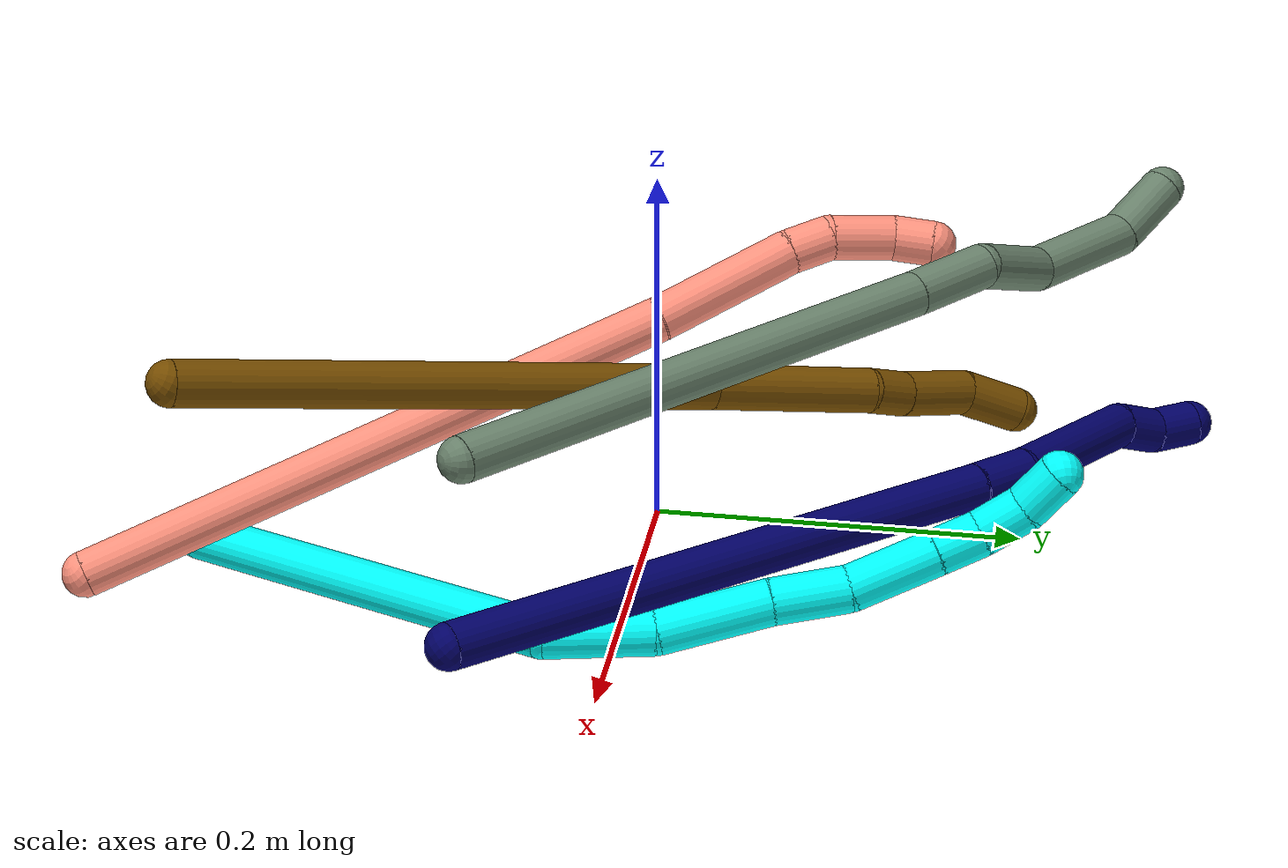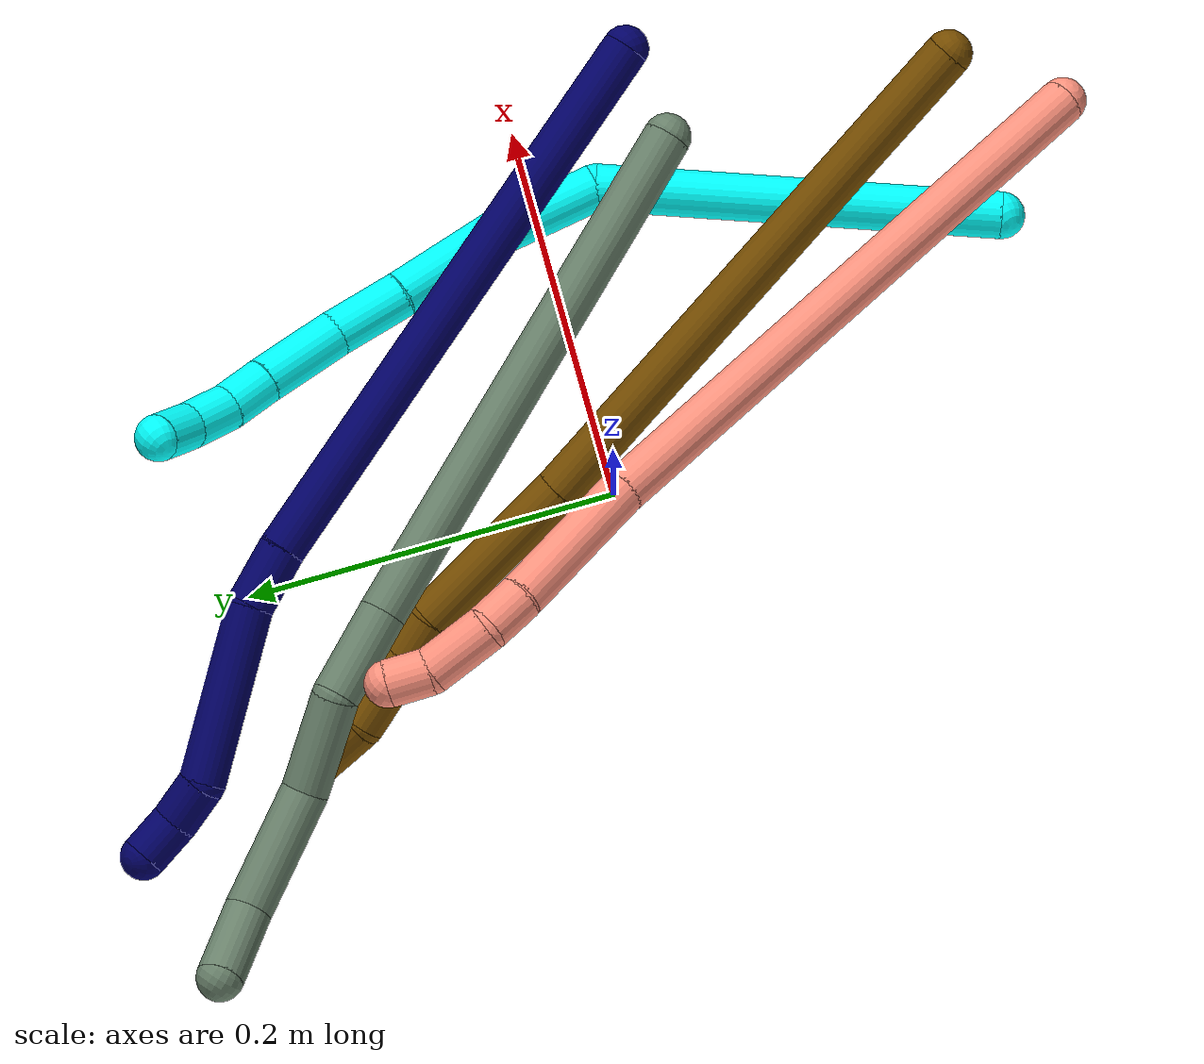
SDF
<sdf version="1.7">
 <world name="default">
  <model name="3">
   <static>0</static>
   <link name="3">
    <collision name="collision-cylinder-e_1_1_4">
     <pose>-0.025454 0.084333 -0.061261 -2.19903 -0.239508 0.463776</pose>
     <geometry><cylinder><radius>0.0125</radius><length>0.214596</length></cylinder></geometry>
     <surface>
      <friction><ode><mu>1.16</mu><mu2>1.16</mu2><slip1>0</slip1><slip2>0</slip2></ode></friction>
      <contact><ode><kp>1e+06</kp><kd>1</kd><max_vel>0</max_vel><min_depth>0.001</min_depth></ode></contact>
     </surface>
    </collision>
    <visual name="visual-cylinder-e_1_1_4">
     <pose>-0.025454 0.084333 -0.061261 -2.19903 -0.239508 0.463776</pose>
     <geometry><cylinder><radius>0.0125</radius><length>0.214596</length></cylinder></geometry>
     <material><ambient>0.003922 1 0.996078 1</ambient></material>
    </visual>
    <collision name="collision-cylinder-e_2_4_5">
     <pose>-0.066617 0.192929 -0.127268 -1.76397 -0.566087 0.679149</pose>
     <geometry><cylinder><radius>0.0125</radius><length>0.058582</length></cylinder></geometry>
     <surface>
      <friction><ode><mu>1.16</mu><mu2>1.16</mu2><slip1>0</slip1><slip2>0</slip2></ode></friction>
      <contact><ode><kp>1e+06</kp><kd>1</kd><max_vel>0</max_vel><min_depth>0.001</min_depth></ode></contact>
     </surface>
    </collision>
    <visual name="visual-cylinder-e_2_4_5">
     <pose>-0.066617 0.192929 -0.127268 -1.76397 -0.566087 0.679149</pose>
     <geometry><cylinder><radius>0.0125</radius><length>0.058582</length></cylinder></geometry>
     <material><ambient>0.003922 1 0.996078 1</ambient></material>
    </visual>
    <collision name="collision-cylinder-e_3_5_6">
     <pose>-0.09705 0.243768 -0.130259 -1.50488 -0.504968 0.473962</pose>
     <geometry><cylinder><radius>0.0125</radius><length>0.060869</length></cylinder></geometry>
     <surface>
      <friction><ode><mu>1.16</mu><mu2>1.16</mu2><slip1>0</slip1><slip2>0</slip2></ode></friction>
      <contact><ode><kp>1e+06</kp><kd>1</kd><max_vel>0</max_vel><min_depth>0.001</min_depth></ode></contact>
     </surface>
    </collision>
    <visual name="visual-cylinder-e_3_5_6">
     <pose>-0.09705 0.243768 -0.130259 -1.50488 -0.504968 0.473962</pose>
     <geometry><cylinder><radius>0.0125</radius><length>0.060869</length></cylinder></geometry>
     <material><ambient>0.003922 1 0.996078 1</ambient></material>
    </visual>
    <collision name="collision-cylinder-e_4_6_7">
     <pose>-0.122517 0.28785 -0.128881 -1.59234 -0.550382 0.561754</pose>
     <geometry><cylinder><radius>0.0125</radius><length>0.041083</length></cylinder></geometry>
     <surface>
      <friction><ode><mu>1.16</mu><mu2>1.16</mu2><slip1>0</slip1><slip2>0</slip2></ode></friction>
      <contact><ode><kp>1e+06</kp><kd>1</kd><max_vel>0</max_vel><min_depth>0.001</min_depth></ode></contact>
     </surface>
    </collision>
    <visual name="visual-cylinder-e_4_6_7">
     <pose>-0.122517 0.28785 -0.128881 -1.59234 -0.550382 0.561754</pose>
     <geometry><cylinder><radius>0.0125</radius><length>0.041083</length></cylinder></geometry>
     <material><ambient>0.003922 1 0.996078 1</ambient></material>
    </visual>
    <collision name="collision-cylinder-e_5_7_8">
     <pose>-0.142411 0.327272 -0.125447 -1.39861 -0.390216 0.32943</pose>
     <geometry><cylinder><radius>0.0125</radius><length>0.04811</length></cylinder></geometry>
     <surface>
      <friction><ode><mu>1.16</mu><mu2>1.16</mu2><slip1>0</slip1><slip2>0</slip2></ode></friction>
      <contact><ode><kp>1e+06</kp><kd>1</kd><max_vel>0</max_vel><min_depth>0.001</min_depth></ode></contact>
     </surface>
    </collision>
    <visual name="visual-cylinder-e_5_7_8">
     <pose>-0.142411 0.327272 -0.125447 -1.39861 -0.390216 0.32943</pose>
     <geometry><cylinder><radius>0.0125</radius><length>0.04811</length></cylinder></geometry>
     <material><ambient>0.003922 1 0.996078 1</ambient></material>
    </visual>
    <collision name="collision-cylinder-e_6_8_9">
     <pose>-0.156645 0.360491 -0.119346 -1.37092 -0.415258 0.341187</pose>
     <geometry><cylinder><radius>0.0125</radius><length>0.025205</length></cylinder></geometry>
     <surface>
      <friction><ode><mu>1.16</mu><mu2>1.16</mu2><slip1>0</slip1><slip2>0</slip2></ode></friction>
      <contact><ode><kp>1e+06</kp><kd>1</kd><max_vel>0</max_vel><min_depth>0.001</min_depth></ode></contact>
     </surface>
    </collision>
    <visual name="visual-cylinder-e_6_8_9">
     <pose>-0.156645 0.360491 -0.119346 -1.37092 -0.415258 0.341187</pose>
     <geometry><cylinder><radius>0.0125</radius><length>0.025205</length></cylinder></geometry>
     <material><ambient>0.003922 1 0.996078 1</ambient></material>
    </visual>
    <collision name="collision-cylinder-e_7_9_10">
     <pose>-0.163943 0.384673 -0.114685 -1.38871 -0.167458 0.13954</pose>
     <geometry><cylinder><radius>0.0125</radius><length>0.026564</length></cylinder></geometry>
     <surface>
      <friction><ode><mu>1.16</mu><mu2>1.16</mu2><slip1>0</slip1><slip2>0</slip2></ode></friction>
      <contact><ode><kp>1e+06</kp><kd>1</kd><max_vel>0</max_vel><min_depth>0.001</min_depth></ode></contact>
     </surface>
    </collision>
    <visual name="visual-cylinder-e_7_9_10">
     <pose>-0.163943 0.384673 -0.114685 -1.38871 -0.167458 0.13954</pose>
     <geometry><cylinder><radius>0.0125</radius><length>0.026564</length></cylinder></geometry>
     <material><ambient>0.003922 1 0.996078 1</ambient></material>
    </visual>
    <collision name="collision-cylinder-e_8_10_2">
     <pose>-0.164923 0.409449 -0.108696 -1.27562 0.098921 -0.073341</pose>
     <geometry><cylinder><radius>0.0125</radius><length>0.024992</length></cylinder></geometry>
     <surface>
      <friction><ode><mu>1.16</mu><mu2>1.16</mu2><slip1>0</slip1><slip2>0</slip2></ode></friction>
      <contact><ode><kp>1e+06</kp><kd>1</kd><max_vel>0</max_vel><min_depth>0.001</min_depth></ode></contact>
     </surface>
    </collision>
    <visual name="visual-cylinder-e_8_10_2">
     <pose>-0.164923 0.409449 -0.108696 -1.27562 0.098921 -0.073341</pose>
     <geometry><cylinder><radius>0.0125</radius><length>0.024992</length></cylinder></geometry>
     <material><ambient>0.003922 1 0.996078 1</ambient></material>
    </visual>
    <collision name="collision-sphere-2">
     <pose>-0.163689 0.421346 -0.105079 0 -0 0</pose>
     <geometry><sphere><radius>0.0125</radius></sphere></geometry>
     <surface>
      <friction><ode><mu>1.16</mu><mu2>1.16</mu2><slip1>0</slip1><slip2>0</slip2></ode></friction>
      <contact><ode><kp>1e+06</kp><kd>1</kd><max_vel>0</max_vel><min_depth>0.001</min_depth></ode></contact>
     </surface>
    </collision>
    <visual name="visual-sphere-2">
     <pose>-0.163689 0.421346 -0.105079 0 -0 0</pose>
     <geometry><sphere><radius>0.0125</radius></sphere></geometry>
     <material><ambient>0.003922 1 0.996078 1</ambient></material>
    </visual>
    <collision name="collision-sphere-10">
     <pose>-0.166157 0.397552 -0.112314 0 -0 0</pose>
     <geometry><sphere><radius>0.0125</radius></sphere></geometry>
     <surface>
      <friction><ode><mu>1.16</mu><mu2>1.16</mu2><slip1>0</slip1><slip2>0</slip2></ode></friction>
      <contact><ode><kp>1e+06</kp><kd>1</kd><max_vel>0</max_vel><min_depth>0.001</min_depth></ode></contact>
     </surface>
    </collision>
    <visual name="visual-sphere-10">
     <pose>-0.166157 0.397552 -0.112314 0 -0 0</pose>
     <geometry><sphere><radius>0.0125</radius></sphere></geometry>
     <material><ambient>0.003922 1 0.996078 1</ambient></material>
    </visual>
    <collision name="collision-sphere-9">
     <pose>-0.161729 0.371793 -0.117057 0 -0 0</pose>
     <geometry><sphere><radius>0.0125</radius></sphere></geometry>
     <surface>
      <friction><ode><mu>1.16</mu><mu2>1.16</mu2><slip1>0</slip1><slip2>0</slip2></ode></friction>
      <contact><ode><kp>1e+06</kp><kd>1</kd><max_vel>0</max_vel><min_depth>0.001</min_depth></ode></contact>
     </surface>
    </collision>
    <visual name="visual-sphere-9">
     <pose>-0.161729 0.371793 -0.117057 0 -0 0</pose>
     <geometry><sphere><radius>0.0125</radius></sphere></geometry>
     <material><ambient>0.003922 1 0.996078 1</ambient></material>
    </visual>
    <collision name="collision-sphere-4">
     <pose>-0.050908 0.168667 -0.122522 0 -0 0</pose>
     <geometry><sphere><radius>0.0125</radius></sphere></geometry>
     <surface>
      <friction><ode><mu>1.16</mu><mu2>1.16</mu2><slip1>0</slip1><slip2>0</slip2></ode></friction>
      <contact><ode><kp>1e+06</kp><kd>1</kd><max_vel>0</max_vel><min_depth>0.001</min_depth></ode></contact>
     </surface>
    </collision>
    <visual name="visual-sphere-4">
     <pose>-0.050908 0.168667 -0.122522 0 -0 0</pose>
     <geometry><sphere><radius>0.0125</radius></sphere></geometry>
     <material><ambient>0.003922 1 0.996078 1</ambient></material>
    </visual>
    <collision name="collision-sphere-1">
     <geometry><sphere><radius>0.0125</radius></sphere></geometry>
     <surface>
      <friction><ode><mu>1.16</mu><mu2>1.16</mu2><slip1>0</slip1><slip2>0</slip2></ode></friction>
      <contact><ode><kp>1e+06</kp><kd>1</kd><max_vel>0</max_vel><min_depth>0.001</min_depth></ode></contact>
     </surface>
    </collision>
    <visual name="visual-sphere-1">
     <geometry><sphere><radius>0.0125</radius></sphere></geometry>
     <material><ambient>0.003922 1 0.996078 1</ambient></material>
    </visual>
    <collision name="collision-sphere-8">
     <pose>-0.151561 0.349189 -0.121636 0 -0 0</pose>
     <geometry><sphere><radius>0.0125</radius></sphere></geometry>
     <surface>
      <friction><ode><mu>1.16</mu><mu2>1.16</mu2><slip1>0</slip1><slip2>0</slip2></ode></friction>
      <contact><ode><kp>1e+06</kp><kd>1</kd><max_vel>0</max_vel><min_depth>0.001</min_depth></ode></contact>
     </surface>
    </collision>
    <visual name="visual-sphere-8">
     <pose>-0.151561 0.349189 -0.121636 0 -0 0</pose>
     <geometry><sphere><radius>0.0125</radius></sphere></geometry>
     <material><ambient>0.003922 1 0.996078 1</ambient></material>
    </visual>
    <collision name="collision-sphere-5">
     <pose>-0.082327 0.21719 -0.132014 0 -0 0</pose>
     <geometry><sphere><radius>0.0125</radius></sphere></geometry>
     <surface>
      <friction><ode><mu>1.16</mu><mu2>1.16</mu2><slip1>0</slip1><slip2>0</slip2></ode></friction>
      <contact><ode><kp>1e+06</kp><kd>1</kd><max_vel>0</max_vel><min_depth>0.001</min_depth></ode></contact>
     </surface>
    </collision>
    <visual name="visual-sphere-5">
     <pose>-0.082327 0.21719 -0.132014 0 -0 0</pose>
     <geometry><sphere><radius>0.0125</radius></sphere></geometry>
     <material><ambient>0.003922 1 0.996078 1</ambient></material>
    </visual>
    <collision name="collision-sphere-6">
     <pose>-0.111774 0.270346 -0.128504 0 -0 0</pose>
     <geometry><sphere><radius>0.0125</radius></sphere></geometry>
     <surface>
      <friction><ode><mu>1.16</mu><mu2>1.16</mu2><slip1>0</slip1><slip2>0</slip2></ode></friction>
      <contact><ode><kp>1e+06</kp><kd>1</kd><max_vel>0</max_vel><min_depth>0.001</min_depth></ode></contact>
     </surface>
    </collision>
    <visual name="visual-sphere-6">
     <pose>-0.111774 0.270346 -0.128504 0 -0 0</pose>
     <geometry><sphere><radius>0.0125</radius></sphere></geometry>
     <material><ambient>0.003922 1 0.996078 1</ambient></material>
    </visual>
    <collision name="collision-sphere-7">
     <pose>-0.133261 0.305354 -0.129259 0 -0 0</pose>
     <geometry><sphere><radius>0.0125</radius></sphere></geometry>
     <surface>
      <friction><ode><mu>1.16</mu><mu2>1.16</mu2><slip1>0</slip1><slip2>0</slip2></ode></friction>
      <contact><ode><kp>1e+06</kp><kd>1</kd><max_vel>0</max_vel><min_depth>0.001</min_depth></ode></contact>
     </surface>
    </collision>
    <visual name="visual-sphere-7">
     <pose>-0.133261 0.305354 -0.129259 0 -0 0</pose>
     <geometry><sphere><radius>0.0125</radius></sphere></geometry>
     <material><ambient>0.003922 1 0.996078 1</ambient></material>
    </visual>
    <inertial>
     <pose>-0.079164 0.202691 -0.097264 0 -0 0</pose>
     <mass>0.5</mass>
     <inertia>
      <ixx>0.001149</ixx>
      <ixy>0</ixy>
      <ixz>0</ixz>
      <iyy>7.1e-05</iyy>
      <iyz>0</iyz>
      <izz>-0.000493</izz>
     </inertia>
    </inertial>
   </link>
   <pose>0.086507 -0.236645 0.011492 0.850955 -0.730439 -0.670181</pose>
  </model>
  <model name="7">
   <static>0</static>
   <link name="7">
    <collision name="collision-cylinder-e_1_1_4">
     <pose>-0.096172 0.066322 -0.109323 -2.59629 -0.644853 1.74784</pose>
     <geometry><cylinder><radius>0.0125</radius><length>0.319995</length></cylinder></geometry>
     <surface>
      <friction><ode><mu>1.16</mu><mu2>1.16</mu2><slip1>0</slip1><slip2>0</slip2></ode></friction>
      <contact><ode><kp>1e+06</kp><kd>1</kd><max_vel>0</max_vel><min_depth>0.001</min_depth></ode></contact>
     </surface>
    </collision>
    <visual name="visual-cylinder-e_1_1_4">
     <pose>-0.096172 0.066322 -0.109323 -2.59629 -0.644853 1.74784</pose>
     <geometry><cylinder><radius>0.0125</radius><length>0.319995</length></cylinder></geometry>
     <material><ambient>0.003922 0 0.403922 1</ambient></material>
    </visual>
    <collision name="collision-cylinder-e_2_4_5">
     <pose>-0.20251 0.140926 -0.229331 -2.48223 -0.644832 1.54685</pose>
     <geometry><cylinder><radius>0.0125</radius><length>0.033828</length></cylinder></geometry>
     <surface>
      <friction><ode><mu>1.16</mu><mu2>1.16</mu2><slip1>0</slip1><slip2>0</slip2></ode></friction>
      <contact><ode><kp>1e+06</kp><kd>1</kd><max_vel>0</max_vel><min_depth>0.001</min_depth></ode></contact>
     </surface>
    </collision>
    <visual name="visual-cylinder-e_2_4_5">
     <pose>-0.20251 0.140926 -0.229331 -2.48223 -0.644832 1.54685</pose>
     <geometry><cylinder><radius>0.0125</radius><length>0.033828</length></cylinder></geometry>
     <material><ambient>0.003922 0 0.403922 1</ambient></material>
    </visual>
    <collision name="collision-cylinder-e_3_5_6">
     <pose>-0.239902 0.181668 -0.26216 -2.16948 -0.605906 1.06848</pose>
     <geometry><cylinder><radius>0.0125</radius><length>0.095611</length></cylinder></geometry>
     <surface>
      <friction><ode><mu>1.16</mu><mu2>1.16</mu2><slip1>0</slip1><slip2>0</slip2></ode></friction>
      <contact><ode><kp>1e+06</kp><kd>1</kd><max_vel>0</max_vel><min_depth>0.001</min_depth></ode></contact>
     </surface>
    </collision>
    <visual name="visual-cylinder-e_3_5_6">
     <pose>-0.239902 0.181668 -0.26216 -2.16948 -0.605906 1.06848</pose>
     <geometry><cylinder><radius>0.0125</radius><length>0.095611</length></cylinder></geometry>
     <material><ambient>0.003922 0 0.403922 1</ambient></material>
    </visual>
    <collision name="collision-cylinder-e_4_6_7">
     <pose>-0.278187 0.218399 -0.28976 -2.47743 -1.01123 2.02739</pose>
     <geometry><cylinder><radius>0.0125</radius><length>0.0261</length></cylinder></geometry>
     <surface>
      <friction><ode><mu>1.16</mu><mu2>1.16</mu2><slip1>0</slip1><slip2>0</slip2></ode></friction>
      <contact><ode><kp>1e+06</kp><kd>1</kd><max_vel>0</max_vel><min_depth>0.001</min_depth></ode></contact>
     </surface>
    </collision>
    <visual name="visual-cylinder-e_4_6_7">
     <pose>-0.278187 0.218399 -0.28976 -2.47743 -1.01123 2.02739</pose>
     <geometry><cylinder><radius>0.0125</radius><length>0.0261</length></cylinder></geometry>
     <material><ambient>0.003922 0 0.403922 1</ambient></material>
    </visual>
    <collision name="collision-cylinder-e_5_7_2">
     <pose>-0.296943 0.226312 -0.303998 -2.74843 -0.680531 2.11679</pose>
     <geometry><cylinder><radius>0.0125</radius><length>0.024466</length></cylinder></geometry>
     <surface>
      <friction><ode><mu>1.16</mu><mu2>1.16</mu2><slip1>0</slip1><slip2>0</slip2></ode></friction>
      <contact><ode><kp>1e+06</kp><kd>1</kd><max_vel>0</max_vel><min_depth>0.001</min_depth></ode></contact>
     </surface>
    </collision>
    <visual name="visual-cylinder-e_5_7_2">
     <pose>-0.296943 0.226312 -0.303998 -2.74843 -0.680531 2.11679</pose>
     <geometry><cylinder><radius>0.0125</radius><length>0.024466</length></cylinder></geometry>
     <material><ambient>0.003922 0 0.403922 1</ambient></material>
    </visual>
    <collision name="collision-sphere-2">
     <pose>-0.30464 0.229954 -0.31278 0 -0 0</pose>
     <geometry><sphere><radius>0.0125</radius></sphere></geometry>
     <surface>
      <friction><ode><mu>1.16</mu><mu2>1.16</mu2><slip1>0</slip1><slip2>0</slip2></ode></friction>
      <contact><ode><kp>1e+06</kp><kd>1</kd><max_vel>0</max_vel><min_depth>0.001</min_depth></ode></contact>
     </surface>
    </collision>
    <visual name="visual-sphere-2">
     <pose>-0.30464 0.229954 -0.31278 0 -0 0</pose>
     <geometry><sphere><radius>0.0125</radius></sphere></geometry>
     <material><ambient>0.003922 0 0.403922 1</ambient></material>
    </visual>
    <collision name="collision-sphere-7">
     <pose>-0.289247 0.222669 -0.295215 0 -0 0</pose>
     <geometry><sphere><radius>0.0125</radius></sphere></geometry>
     <surface>
      <friction><ode><mu>1.16</mu><mu2>1.16</mu2><slip1>0</slip1><slip2>0</slip2></ode></friction>
      <contact><ode><kp>1e+06</kp><kd>1</kd><max_vel>0</max_vel><min_depth>0.001</min_depth></ode></contact>
     </surface>
    </collision>
    <visual name="visual-sphere-7">
     <pose>-0.289247 0.222669 -0.295215 0 -0 0</pose>
     <geometry><sphere><radius>0.0125</radius></sphere></geometry>
     <material><ambient>0.003922 0 0.403922 1</ambient></material>
    </visual>
    <collision name="collision-sphere-6">
     <pose>-0.267127 0.214129 -0.284306 0 -0 0</pose>
     <geometry><sphere><radius>0.0125</radius></sphere></geometry>
     <surface>
      <friction><ode><mu>1.16</mu><mu2>1.16</mu2><slip1>0</slip1><slip2>0</slip2></ode></friction>
      <contact><ode><kp>1e+06</kp><kd>1</kd><max_vel>0</max_vel><min_depth>0.001</min_depth></ode></contact>
     </surface>
    </collision>
    <visual name="visual-sphere-6">
     <pose>-0.267127 0.214129 -0.284306 0 -0 0</pose>
     <geometry><sphere><radius>0.0125</radius></sphere></geometry>
     <material><ambient>0.003922 0 0.403922 1</ambient></material>
    </visual>
    <collision name="collision-sphere-5">
     <pose>-0.212676 0.149207 -0.240015 0 -0 0</pose>
     <geometry><sphere><radius>0.0125</radius></sphere></geometry>
     <surface>
      <friction><ode><mu>1.16</mu><mu2>1.16</mu2><slip1>0</slip1><slip2>0</slip2></ode></friction>
      <contact><ode><kp>1e+06</kp><kd>1</kd><max_vel>0</max_vel><min_depth>0.001</min_depth></ode></contact>
     </surface>
    </collision>
    <visual name="visual-sphere-5">
     <pose>-0.212676 0.149207 -0.240015 0 -0 0</pose>
     <geometry><sphere><radius>0.0125</radius></sphere></geometry>
     <material><ambient>0.003922 0 0.403922 1</ambient></material>
    </visual>
    <collision name="collision-sphere-1">
     <geometry><sphere><radius>0.0125</radius></sphere></geometry>
     <surface>
      <friction><ode><mu>1.16</mu><mu2>1.16</mu2><slip1>0</slip1><slip2>0</slip2></ode></friction>
      <contact><ode><kp>1e+06</kp><kd>1</kd><max_vel>0</max_vel><min_depth>0.001</min_depth></ode></contact>
     </surface>
    </collision>
    <visual name="visual-sphere-1">
     <geometry><sphere><radius>0.0125</radius></sphere></geometry>
     <material><ambient>0.003922 0 0.403922 1</ambient></material>
    </visual>
    <collision name="collision-sphere-4">
     <pose>-0.192343 0.132645 -0.218647 0 -0 0</pose>
     <geometry><sphere><radius>0.0125</radius></sphere></geometry>
     <surface>
      <friction><ode><mu>1.16</mu><mu2>1.16</mu2><slip1>0</slip1><slip2>0</slip2></ode></friction>
      <contact><ode><kp>1e+06</kp><kd>1</kd><max_vel>0</max_vel><min_depth>0.001</min_depth></ode></contact>
     </surface>
    </collision>
    <visual name="visual-sphere-4">
     <pose>-0.192343 0.132645 -0.218647 0 -0 0</pose>
     <geometry><sphere><radius>0.0125</radius></sphere></geometry>
     <material><ambient>0.003922 0 0.403922 1</ambient></material>
    </visual>
    <inertial>
     <pose>-0.150176 0.109193 -0.165613 0 -0 0</pose>
     <mass>0.5</mass>
     <inertia>
      <ixx>0.001838</ixx>
      <ixy>0</ixy>
      <ixz>0</ixz>
      <iyy>0.003508</iyy>
      <iyz>0</iyz>
      <izz>0.000481</izz>
     </inertia>
    </inertial>
   </link>
   <pose>0.221533 -0.068715 0.039499 3.0824 -0.867069 -1.25299</pose>
  </model>
  <model name="12">
   <static>0</static>
   <link name="12">
    <collision name="collision-cylinder-e_1_1_4">
     <pose>-0.038997 0.046308 -0.138949 -2.81989 -0.260222 1.35735</pose>
     <geometry><cylinder><radius>0.0125</radius><length>0.30313</length></cylinder></geometry>
     <surface>
      <friction><ode><mu>1.16</mu><mu2>1.16</mu2><slip1>0</slip1><slip2>0</slip2></ode></friction>
      <contact><ode><kp>1e+06</kp><kd>1</kd><max_vel>0</max_vel><min_depth>0.001</min_depth></ode></contact>
     </surface>
    </collision>
    <visual name="visual-cylinder-e_1_1_4">
     <pose>-0.038997 0.046308 -0.138949 -2.81989 -0.260222 1.35735</pose>
     <geometry><cylinder><radius>0.0125</radius><length>0.30313</length></cylinder></geometry>
     <material><ambient>0.466667 0.301961 0 1</ambient></material>
    </visual>
    <collision name="collision-cylinder-e_2_4_5">
     <pose>-0.088279 0.108856 -0.321131 -2.78227 -0.219139 1.08924</pose>
     <geometry><cylinder><radius>0.0125</radius><length>0.09463</length></cylinder></geometry>
     <surface>
      <friction><ode><mu>1.16</mu><mu2>1.16</mu2><slip1>0</slip1><slip2>0</slip2></ode></friction>
      <contact><ode><kp>1e+06</kp><kd>1</kd><max_vel>0</max_vel><min_depth>0.001</min_depth></ode></contact>
     </surface>
    </collision>
    <visual name="visual-cylinder-e_2_4_5">
     <pose>-0.088279 0.108856 -0.321131 -2.78227 -0.219139 1.08924</pose>
     <geometry><cylinder><radius>0.0125</radius><length>0.09463</length></cylinder></geometry>
     <material><ambient>0.466667 0.301961 0 1</ambient></material>
    </visual>
    <collision name="collision-cylinder-e_3_5_6">
     <pose>-0.101944 0.12638 -0.375666 -3.02839 -0.288803 2.39847</pose>
     <geometry><cylinder><radius>0.0125</radius><length>0.023729</length></cylinder></geometry>
     <surface>
      <friction><ode><mu>1.16</mu><mu2>1.16</mu2><slip1>0</slip1><slip2>0</slip2></ode></friction>
      <contact><ode><kp>1e+06</kp><kd>1</kd><max_vel>0</max_vel><min_depth>0.001</min_depth></ode></contact>
     </surface>
    </collision>
    <visual name="visual-cylinder-e_3_5_6">
     <pose>-0.101944 0.12638 -0.375666 -3.02839 -0.288803 2.39847</pose>
     <geometry><cylinder><radius>0.0125</radius><length>0.023729</length></cylinder></geometry>
     <material><ambient>0.466667 0.301961 0 1</ambient></material>
    </visual>
    <collision name="collision-cylinder-e_4_6_7">
     <pose>-0.11287 0.131661 -0.406895 -2.94368 -0.355499 2.13185</pose>
     <geometry><cylinder><radius>0.0125</radius><length>0.043363</length></cylinder></geometry>
     <surface>
      <friction><ode><mu>1.16</mu><mu2>1.16</mu2><slip1>0</slip1><slip2>0</slip2></ode></friction>
      <contact><ode><kp>1e+06</kp><kd>1</kd><max_vel>0</max_vel><min_depth>0.001</min_depth></ode></contact>
     </surface>
    </collision>
    <visual name="visual-cylinder-e_4_6_7">
     <pose>-0.11287 0.131661 -0.406895 -2.94368 -0.355499 2.13185</pose>
     <geometry><cylinder><radius>0.0125</radius><length>0.043363</length></cylinder></geometry>
     <material><ambient>0.466667 0.301961 0 1</ambient></material>
    </visual>
    <collision name="collision-cylinder-e_5_7_2">
     <pose>-0.120546 0.139202 -0.444037 -2.93855 -0.007386 0.072465</pose>
     <geometry><cylinder><radius>0.0125</radius><length>0.035148</length></cylinder></geometry>
     <surface>
      <friction><ode><mu>1.16</mu><mu2>1.16</mu2><slip1>0</slip1><slip2>0</slip2></ode></friction>
      <contact><ode><kp>1e+06</kp><kd>1</kd><max_vel>0</max_vel><min_depth>0.001</min_depth></ode></contact>
     </surface>
    </collision>
    <visual name="visual-cylinder-e_5_7_2">
     <pose>-0.120546 0.139202 -0.444037 -2.93855 -0.007386 0.072465</pose>
     <geometry><cylinder><radius>0.0125</radius><length>0.035148</length></cylinder></geometry>
     <material><ambient>0.466667 0.301961 0 1</ambient></material>
    </visual>
    <collision name="collision-sphere-2">
     <pose>-0.120676 0.142745 -0.461249 0 -0 0</pose>
     <geometry><sphere><radius>0.0125</radius></sphere></geometry>
     <surface>
      <friction><ode><mu>1.16</mu><mu2>1.16</mu2><slip1>0</slip1><slip2>0</slip2></ode></friction>
      <contact><ode><kp>1e+06</kp><kd>1</kd><max_vel>0</max_vel><min_depth>0.001</min_depth></ode></contact>
     </surface>
    </collision>
    <visual name="visual-sphere-2">
     <pose>-0.120676 0.142745 -0.461249 0 -0 0</pose>
     <geometry><sphere><radius>0.0125</radius></sphere></geometry>
     <material><ambient>0.466667 0.301961 0 1</ambient></material>
    </visual>
    <collision name="collision-sphere-7">
     <pose>-0.120416 0.135658 -0.426824 0 -0 0</pose>
     <geometry><sphere><radius>0.0125</radius></sphere></geometry>
     <surface>
      <friction><ode><mu>1.16</mu><mu2>1.16</mu2><slip1>0</slip1><slip2>0</slip2></ode></friction>
      <contact><ode><kp>1e+06</kp><kd>1</kd><max_vel>0</max_vel><min_depth>0.001</min_depth></ode></contact>
     </surface>
    </collision>
    <visual name="visual-sphere-7">
     <pose>-0.120416 0.135658 -0.426824 0 -0 0</pose>
     <geometry><sphere><radius>0.0125</radius></sphere></geometry>
     <material><ambient>0.466667 0.301961 0 1</ambient></material>
    </visual>
    <collision name="collision-sphere-6">
     <pose>-0.105323 0.127665 -0.386966 0 -0 0</pose>
     <geometry><sphere><radius>0.0125</radius></sphere></geometry>
     <surface>
      <friction><ode><mu>1.16</mu><mu2>1.16</mu2><slip1>0</slip1><slip2>0</slip2></ode></friction>
      <contact><ode><kp>1e+06</kp><kd>1</kd><max_vel>0</max_vel><min_depth>0.001</min_depth></ode></contact>
     </surface>
    </collision>
    <visual name="visual-sphere-6">
     <pose>-0.105323 0.127665 -0.386966 0 -0 0</pose>
     <geometry><sphere><radius>0.0125</radius></sphere></geometry>
     <material><ambient>0.466667 0.301961 0 1</ambient></material>
    </visual>
    <collision name="collision-sphere-5">
     <pose>-0.098565 0.125095 -0.364365 0 -0 0</pose>
     <geometry><sphere><radius>0.0125</radius></sphere></geometry>
     <surface>
      <friction><ode><mu>1.16</mu><mu2>1.16</mu2><slip1>0</slip1><slip2>0</slip2></ode></friction>
      <contact><ode><kp>1e+06</kp><kd>1</kd><max_vel>0</max_vel><min_depth>0.001</min_depth></ode></contact>
     </surface>
    </collision>
    <visual name="visual-sphere-5">
     <pose>-0.098565 0.125095 -0.364365 0 -0 0</pose>
     <geometry><sphere><radius>0.0125</radius></sphere></geometry>
     <material><ambient>0.466667 0.301961 0 1</ambient></material>
    </visual>
    <collision name="collision-sphere-1">
     <geometry><sphere><radius>0.0125</radius></sphere></geometry>
     <surface>
      <friction><ode><mu>1.16</mu><mu2>1.16</mu2><slip1>0</slip1><slip2>0</slip2></ode></friction>
      <contact><ode><kp>1e+06</kp><kd>1</kd><max_vel>0</max_vel><min_depth>0.001</min_depth></ode></contact>
     </surface>
    </collision>
    <visual name="visual-sphere-1">
     <geometry><sphere><radius>0.0125</radius></sphere></geometry>
     <material><ambient>0.466667 0.301961 0 1</ambient></material>
    </visual>
    <collision name="collision-sphere-4">
     <pose>-0.077994 0.092616 -0.277897 0 -0 0</pose>
     <geometry><sphere><radius>0.0125</radius></sphere></geometry>
     <surface>
      <friction><ode><mu>1.16</mu><mu2>1.16</mu2><slip1>0</slip1><slip2>0</slip2></ode></friction>
      <contact><ode><kp>1e+06</kp><kd>1</kd><max_vel>0</max_vel><min_depth>0.001</min_depth></ode></contact>
     </surface>
    </collision>
    <visual name="visual-sphere-4">
     <pose>-0.077994 0.092616 -0.277897 0 -0 0</pose>
     <geometry><sphere><radius>0.0125</radius></sphere></geometry>
     <material><ambient>0.466667 0.301961 0 1</ambient></material>
    </visual>
    <inertial>
     <pose>-0.063451 0.075878 -0.229347 0 -0 0</pose>
     <mass>0.5</mass>
     <inertia>
      <ixx>0.002777</ixx>
      <ixy>0</ixy>
      <ixz>0</ixz>
      <iyy>0.001978</iyy>
      <iyz>0</iyz>
      <izz>-0.000157</izz>
     </inertia>
    </inertial>
   </link>
   <pose>0.157393 -0.223059 0.140423 0.857647 0.505662 0.12858</pose>
  </model>
  <model name="16">
   <static>0</static>
   <link name="16">
    <collision name="collision-cylinder-e_1_1_4">
     <pose>-0.131416 0.081164 -0.065098 -2.24679 -0.901119 1.57887</pose>
     <geometry><cylinder><radius>0.0125</radius><length>0.335234</length></cylinder></geometry>
     <surface>
      <friction><ode><mu>1.16</mu><mu2>1.16</mu2><slip1>0</slip1><slip2>0</slip2></ode></friction>
      <contact><ode><kp>1e+06</kp><kd>1</kd><max_vel>0</max_vel><min_depth>0.001</min_depth></ode></contact>
     </surface>
    </collision>
    <visual name="visual-cylinder-e_1_1_4">
     <pose>-0.131416 0.081164 -0.065098 -2.24679 -0.901119 1.57887</pose>
     <geometry><cylinder><radius>0.0125</radius><length>0.335234</length></cylinder></geometry>
     <material><ambient>1 0.576471 0.494118 1</ambient></material>
    </visual>
    <collision name="collision-cylinder-e_2_4_5">
     <pose>-0.296593 0.179334 -0.145559 -2.30549 -0.974447 1.74608</pose>
     <geometry><cylinder><radius>0.0125</radius><length>0.081609</length></cylinder></geometry>
     <surface>
      <friction><ode><mu>1.16</mu><mu2>1.16</mu2><slip1>0</slip1><slip2>0</slip2></ode></friction>
      <contact><ode><kp>1e+06</kp><kd>1</kd><max_vel>0</max_vel><min_depth>0.001</min_depth></ode></contact>
     </surface>
    </collision>
    <visual name="visual-cylinder-e_2_4_5">
     <pose>-0.296593 0.179334 -0.145559 -2.30549 -0.974447 1.74608</pose>
     <geometry><cylinder><radius>0.0125</radius><length>0.081609</length></cylinder></geometry>
     <material><ambient>1 0.576471 0.494118 1</ambient></material>
    </visual>
    <collision name="collision-cylinder-e_3_5_6">
     <pose>-0.339415 0.202004 -0.166558 -2.35372 -0.848094 1.65326</pose>
     <geometry><cylinder><radius>0.0125</radius><length>0.024162</length></cylinder></geometry>
     <surface>
      <friction><ode><mu>1.16</mu><mu2>1.16</mu2><slip1>0</slip1><slip2>0</slip2></ode></friction>
      <contact><ode><kp>1e+06</kp><kd>1</kd><max_vel>0</max_vel><min_depth>0.001</min_depth></ode></contact>
     </surface>
    </collision>
    <visual name="visual-cylinder-e_3_5_6">
     <pose>-0.339415 0.202004 -0.166558 -2.35372 -0.848094 1.65326</pose>
     <geometry><cylinder><radius>0.0125</radius><length>0.024162</length></cylinder></geometry>
     <material><ambient>1 0.576471 0.494118 1</ambient></material>
    </visual>
    <collision name="collision-cylinder-e_4_6_7">
     <pose>-0.357708 0.216718 -0.184877 -2.52181 -0.534918 1.41567</pose>
     <geometry><cylinder><radius>0.0125</radius><length>0.036221</length></cylinder></geometry>
     <surface>
      <friction><ode><mu>1.16</mu><mu2>1.16</mu2><slip1>0</slip1><slip2>0</slip2></ode></friction>
      <contact><ode><kp>1e+06</kp><kd>1</kd><max_vel>0</max_vel><min_depth>0.001</min_depth></ode></contact>
     </surface>
    </collision>
    <visual name="visual-cylinder-e_4_6_7">
     <pose>-0.357708 0.216718 -0.184877 -2.52181 -0.534918 1.41567</pose>
     <geometry><cylinder><radius>0.0125</radius><length>0.036221</length></cylinder></geometry>
     <material><ambient>1 0.576471 0.494118 1</ambient></material>
    </visual>
    <collision name="collision-cylinder-e_5_7_2">
     <pose>-0.370168 0.234409 -0.204236 -2.22865 -0.287353 0.573017</pose>
     <geometry><cylinder><radius>0.0125</radius><length>0.022773</length></cylinder></geometry>
     <surface>
      <friction><ode><mu>1.16</mu><mu2>1.16</mu2><slip1>0</slip1><slip2>0</slip2></ode></friction>
      <contact><ode><kp>1e+06</kp><kd>1</kd><max_vel>0</max_vel><min_depth>0.001</min_depth></ode></contact>
     </surface>
    </collision>
    <visual name="visual-cylinder-e_5_7_2">
     <pose>-0.370168 0.234409 -0.204236 -2.22865 -0.287353 0.573017</pose>
     <geometry><cylinder><radius>0.0125</radius><length>0.022773</length></cylinder></geometry>
     <material><ambient>1 0.576471 0.494118 1</ambient></material>
    </visual>
    <collision name="collision-sphere-2">
     <pose>-0.373395 0.24305 -0.210912 0 -0 0</pose>
     <geometry><sphere><radius>0.0125</radius></sphere></geometry>
     <surface>
      <friction><ode><mu>1.16</mu><mu2>1.16</mu2><slip1>0</slip1><slip2>0</slip2></ode></friction>
      <contact><ode><kp>1e+06</kp><kd>1</kd><max_vel>0</max_vel><min_depth>0.001</min_depth></ode></contact>
     </surface>
    </collision>
    <visual name="visual-sphere-2">
     <pose>-0.373395 0.24305 -0.210912 0 -0 0</pose>
     <geometry><sphere><radius>0.0125</radius></sphere></geometry>
     <material><ambient>1 0.576471 0.494118 1</ambient></material>
    </visual>
    <collision name="collision-sphere-7">
     <pose>-0.36694 0.225768 -0.197559 0 -0 0</pose>
     <geometry><sphere><radius>0.0125</radius></sphere></geometry>
     <surface>
      <friction><ode><mu>1.16</mu><mu2>1.16</mu2><slip1>0</slip1><slip2>0</slip2></ode></friction>
      <contact><ode><kp>1e+06</kp><kd>1</kd><max_vel>0</max_vel><min_depth>0.001</min_depth></ode></contact>
     </surface>
    </collision>
    <visual name="visual-sphere-7">
     <pose>-0.36694 0.225768 -0.197559 0 -0 0</pose>
     <geometry><sphere><radius>0.0125</radius></sphere></geometry>
     <material><ambient>1 0.576471 0.494118 1</ambient></material>
    </visual>
    <collision name="collision-sphere-6">
     <pose>-0.348476 0.207668 -0.172194 0 -0 0</pose>
     <geometry><sphere><radius>0.0125</radius></sphere></geometry>
     <surface>
      <friction><ode><mu>1.16</mu><mu2>1.16</mu2><slip1>0</slip1><slip2>0</slip2></ode></friction>
      <contact><ode><kp>1e+06</kp><kd>1</kd><max_vel>0</max_vel><min_depth>0.001</min_depth></ode></contact>
     </surface>
    </collision>
    <visual name="visual-sphere-6">
     <pose>-0.348476 0.207668 -0.172194 0 -0 0</pose>
     <geometry><sphere><radius>0.0125</radius></sphere></geometry>
     <material><ambient>1 0.576471 0.494118 1</ambient></material>
    </visual>
    <collision name="collision-sphere-5">
     <pose>-0.330354 0.196339 -0.160921 0 -0 0</pose>
     <geometry><sphere><radius>0.0125</radius></sphere></geometry>
     <surface>
      <friction><ode><mu>1.16</mu><mu2>1.16</mu2><slip1>0</slip1><slip2>0</slip2></ode></friction>
      <contact><ode><kp>1e+06</kp><kd>1</kd><max_vel>0</max_vel><min_depth>0.001</min_depth></ode></contact>
     </surface>
    </collision>
    <visual name="visual-sphere-5">
     <pose>-0.330354 0.196339 -0.160921 0 -0 0</pose>
     <geometry><sphere><radius>0.0125</radius></sphere></geometry>
     <material><ambient>1 0.576471 0.494118 1</ambient></material>
    </visual>
    <collision name="collision-sphere-1">
     <geometry><sphere><radius>0.0125</radius></sphere></geometry>
     <surface>
      <friction><ode><mu>1.16</mu><mu2>1.16</mu2><slip1>0</slip1><slip2>0</slip2></ode></friction>
      <contact><ode><kp>1e+06</kp><kd>1</kd><max_vel>0</max_vel><min_depth>0.001</min_depth></ode></contact>
     </surface>
    </collision>
    <visual name="visual-sphere-1">
     <geometry><sphere><radius>0.0125</radius></sphere></geometry>
     <material><ambient>1 0.576471 0.494118 1</ambient></material>
    </visual>
    <collision name="collision-sphere-4">
     <pose>-0.262831 0.162329 -0.130196 0 -0 0</pose>
     <geometry><sphere><radius>0.0125</radius></sphere></geometry>
     <surface>
      <friction><ode><mu>1.16</mu><mu2>1.16</mu2><slip1>0</slip1><slip2>0</slip2></ode></friction>
      <contact><ode><kp>1e+06</kp><kd>1</kd><max_vel>0</max_vel><min_depth>0.001</min_depth></ode></contact>
     </surface>
    </collision>
    <visual name="visual-sphere-4">
     <pose>-0.262831 0.162329 -0.130196 0 -0 0</pose>
     <geometry><sphere><radius>0.0125</radius></sphere></geometry>
     <material><ambient>1 0.576471 0.494118 1</ambient></material>
    </visual>
    <inertial>
     <pose>-0.195694 0.119827 -0.098148 0 -0 0</pose>
     <mass>0.5</mass>
     <inertia>
      <ixx>0.001943</ixx>
      <ixy>0</ixy>
      <ixz>0</ixz>
      <iyy>0.00399</iyy>
      <iyz>0</iyz>
      <izz>0.000948</izz>
     </inertia>
    </inertial>
   </link>
   <pose>0.136349 -0.284763 0.011883 0.301891 0.658168 -0.438935</pose>
  </model>
  <model name="17">
   <static>0</static>
   <link name="17">
    <collision name="collision-cylinder-e_1_1_4">
     <pose>-0.025694 0.001402 0.142049 -0.009868 -0.178939 0.000885</pose>
     <geometry><cylinder><radius>0.0125</radius><length>0.288722</length></cylinder></geometry>
     <surface>
      <friction><ode><mu>1.16</mu><mu2>1.16</mu2><slip1>0</slip1><slip2>0</slip2></ode></friction>
      <contact><ode><kp>1e+06</kp><kd>1</kd><max_vel>0</max_vel><min_depth>0.001</min_depth></ode></contact>
     </surface>
    </collision>
    <visual name="visual-cylinder-e_1_1_4">
     <pose>-0.025694 0.001402 0.142049 -0.009868 -0.178939 0.000885</pose>
     <geometry><cylinder><radius>0.0125</radius><length>0.288722</length></cylinder></geometry>
     <material><ambient>0.415686 0.509804 0.423529 1</ambient></material>
    </visual>
    <collision name="collision-cylinder-e_2_4_5">
     <pose>-0.056302 0.003614 0.308053 -0.033821 -0.202206 0.003431</pose>
     <geometry><cylinder><radius>0.0125</radius><length>0.048935</length></cylinder></geometry>
     <surface>
      <friction><ode><mu>1.16</mu><mu2>1.16</mu2><slip1>0</slip1><slip2>0</slip2></ode></friction>
      <contact><ode><kp>1e+06</kp><kd>1</kd><max_vel>0</max_vel><min_depth>0.001</min_depth></ode></contact>
     </surface>
    </collision>
    <visual name="visual-cylinder-e_2_4_5">
     <pose>-0.056302 0.003614 0.308053 -0.033821 -0.202206 0.003431</pose>
     <geometry><cylinder><radius>0.0125</radius><length>0.048935</length></cylinder></geometry>
     <material><ambient>0.415686 0.509804 0.423529 1</ambient></material>
    </visual>
    <collision name="collision-cylinder-e_3_5_6">
     <pose>-0.055579 0.010322 0.357242 -0.229578 0.21419 -0.024789</pose>
     <geometry><cylinder><radius>0.0125</radius><length>0.05304</length></cylinder></geometry>
     <surface>
      <friction><ode><mu>1.16</mu><mu2>1.16</mu2><slip1>0</slip1><slip2>0</slip2></ode></friction>
      <contact><ode><kp>1e+06</kp><kd>1</kd><max_vel>0</max_vel><min_depth>0.001</min_depth></ode></contact>
     </surface>
    </collision>
    <visual name="visual-cylinder-e_3_5_6">
     <pose>-0.055579 0.010322 0.357242 -0.229578 0.21419 -0.024789</pose>
     <geometry><cylinder><radius>0.0125</radius><length>0.05304</length></cylinder></geometry>
     <material><ambient>0.415686 0.509804 0.423529 1</ambient></material>
    </visual>
    <collision name="collision-cylinder-e_4_6_7">
     <pose>-0.055614 0.019681 0.41581 -0.103496 -0.167673 0.008705</pose>
     <geometry><cylinder><radius>0.0125</radius><length>0.06798</length></cylinder></geometry>
     <surface>
      <friction><ode><mu>1.16</mu><mu2>1.16</mu2><slip1>0</slip1><slip2>0</slip2></ode></friction>
      <contact><ode><kp>1e+06</kp><kd>1</kd><max_vel>0</max_vel><min_depth>0.001</min_depth></ode></contact>
     </surface>
    </collision>
    <visual name="visual-cylinder-e_4_6_7">
     <pose>-0.055614 0.019681 0.41581 -0.103496 -0.167673 0.008705</pose>
     <geometry><cylinder><radius>0.0125</radius><length>0.06798</length></cylinder></geometry>
     <material><ambient>0.415686 0.509804 0.423529 1</ambient></material>
    </visual>
    <collision name="collision-cylinder-e_5_7_2">
     <pose>-0.072361 0.025989 0.466355 -0.163841 -0.56563 0.047711</pose>
     <geometry><cylinder><radius>0.0125</radius><length>0.041323</length></cylinder></geometry>
     <surface>
      <friction><ode><mu>1.16</mu><mu2>1.16</mu2><slip1>0</slip1><slip2>0</slip2></ode></friction>
      <contact><ode><kp>1e+06</kp><kd>1</kd><max_vel>0</max_vel><min_depth>0.001</min_depth></ode></contact>
     </surface>
    </collision>
    <visual name="visual-cylinder-e_5_7_2">
     <pose>-0.072361 0.025989 0.466355 -0.163841 -0.56563 0.047711</pose>
     <geometry><cylinder><radius>0.0125</radius><length>0.041323</length></cylinder></geometry>
     <material><ambient>0.415686 0.509804 0.423529 1</ambient></material>
    </visual>
    <collision name="collision-sphere-2">
     <pose>-0.083434 0.028834 0.483565 0 -0 0</pose>
     <geometry><sphere><radius>0.0125</radius></sphere></geometry>
     <surface>
      <friction><ode><mu>1.16</mu><mu2>1.16</mu2><slip1>0</slip1><slip2>0</slip2></ode></friction>
      <contact><ode><kp>1e+06</kp><kd>1</kd><max_vel>0</max_vel><min_depth>0.001</min_depth></ode></contact>
     </surface>
    </collision>
    <visual name="visual-sphere-2">
     <pose>-0.083434 0.028834 0.483565 0 -0 0</pose>
     <geometry><sphere><radius>0.0125</radius></sphere></geometry>
     <material><ambient>0.415686 0.509804 0.423529 1</ambient></material>
    </visual>
    <collision name="collision-sphere-7">
     <pose>-0.061287 0.023144 0.449145 0 -0 0</pose>
     <geometry><sphere><radius>0.0125</radius></sphere></geometry>
     <surface>
      <friction><ode><mu>1.16</mu><mu2>1.16</mu2><slip1>0</slip1><slip2>0</slip2></ode></friction>
      <contact><ode><kp>1e+06</kp><kd>1</kd><max_vel>0</max_vel><min_depth>0.001</min_depth></ode></contact>
     </surface>
    </collision>
    <visual name="visual-sphere-7">
     <pose>-0.061287 0.023144 0.449145 0 -0 0</pose>
     <geometry><sphere><radius>0.0125</radius></sphere></geometry>
     <material><ambient>0.415686 0.509804 0.423529 1</ambient></material>
    </visual>
    <collision name="collision-sphere-6">
     <pose>-0.049942 0.016219 0.382476 0 -0 0</pose>
     <geometry><sphere><radius>0.0125</radius></sphere></geometry>
     <surface>
      <friction><ode><mu>1.16</mu><mu2>1.16</mu2><slip1>0</slip1><slip2>0</slip2></ode></friction>
      <contact><ode><kp>1e+06</kp><kd>1</kd><max_vel>0</max_vel><min_depth>0.001</min_depth></ode></contact>
     </surface>
    </collision>
    <visual name="visual-sphere-6">
     <pose>-0.049942 0.016219 0.382476 0 -0 0</pose>
     <geometry><sphere><radius>0.0125</radius></sphere></geometry>
     <material><ambient>0.415686 0.509804 0.423529 1</ambient></material>
    </visual>
    <collision name="collision-sphere-5">
     <pose>-0.061216 0.004425 0.332008 0 -0 0</pose>
     <geometry><sphere><radius>0.0125</radius></sphere></geometry>
     <surface>
      <friction><ode><mu>1.16</mu><mu2>1.16</mu2><slip1>0</slip1><slip2>0</slip2></ode></friction>
      <contact><ode><kp>1e+06</kp><kd>1</kd><max_vel>0</max_vel><min_depth>0.001</min_depth></ode></contact>
     </surface>
    </collision>
    <visual name="visual-sphere-5">
     <pose>-0.061216 0.004425 0.332008 0 -0 0</pose>
     <geometry><sphere><radius>0.0125</radius></sphere></geometry>
     <material><ambient>0.415686 0.509804 0.423529 1</ambient></material>
    </visual>
    <collision name="collision-sphere-1">
     <geometry><sphere><radius>0.0125</radius></sphere></geometry>
     <surface>
      <friction><ode><mu>1.16</mu><mu2>1.16</mu2><slip1>0</slip1><slip2>0</slip2></ode></friction>
      <contact><ode><kp>1e+06</kp><kd>1</kd><max_vel>0</max_vel><min_depth>0.001</min_depth></ode></contact>
     </surface>
    </collision>
    <visual name="visual-sphere-1">
     <geometry><sphere><radius>0.0125</radius></sphere></geometry>
     <material><ambient>0.415686 0.509804 0.423529 1</ambient></material>
    </visual>
    <collision name="collision-sphere-4">
     <pose>-0.051388 0.002804 0.284098 0 -0 0</pose>
     <geometry><sphere><radius>0.0125</radius></sphere></geometry>
     <surface>
      <friction><ode><mu>1.16</mu><mu2>1.16</mu2><slip1>0</slip1><slip2>0</slip2></ode></friction>
      <contact><ode><kp>1e+06</kp><kd>1</kd><max_vel>0</max_vel><min_depth>0.001</min_depth></ode></contact>
     </surface>
    </collision>
    <visual name="visual-sphere-4">
     <pose>-0.051388 0.002804 0.284098 0 -0 0</pose>
     <geometry><sphere><radius>0.0125</radius></sphere></geometry>
     <material><ambient>0.415686 0.509804 0.423529 1</ambient></material>
    </visual>
    <inertial>
     <pose>-0.039785 0.007082 0.245147 0 -0 0</pose>
     <mass>0.5</mass>
     <inertia>
      <ixx>0.002041</ixx>
      <ixy>0</ixy>
      <ixz>0</ixz>
      <iyy>0.002083</iyy>
      <iyz>0</iyz>
      <izz>0.000378</izz>
     </inertia>
    </inertial>
   </link>
   <pose>0.159461 -0.073722 0.110961 -2.645 1.4213 -0.326297</pose>
  </model>
 </world>
</sdf>
